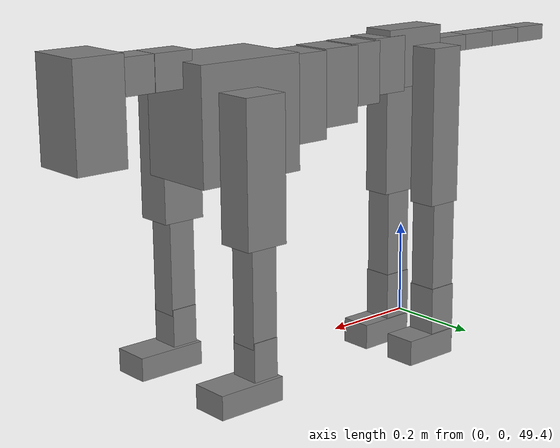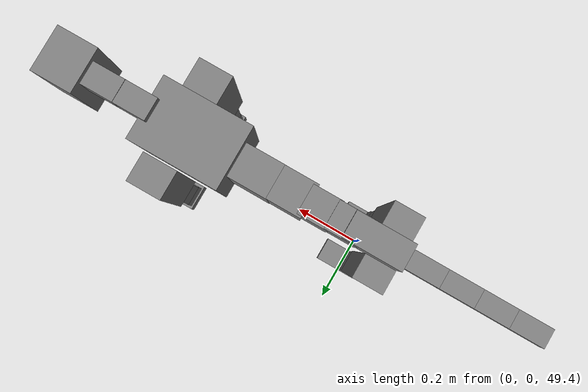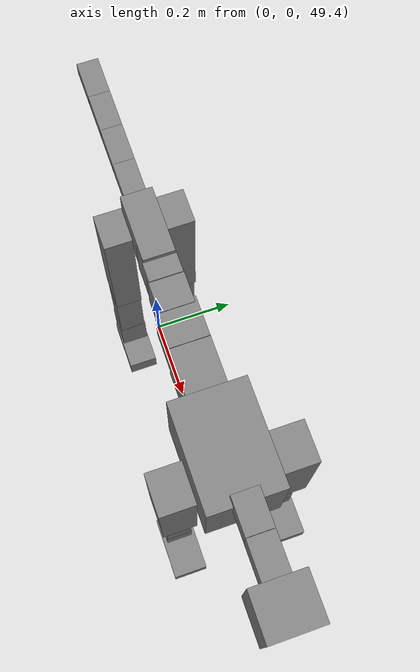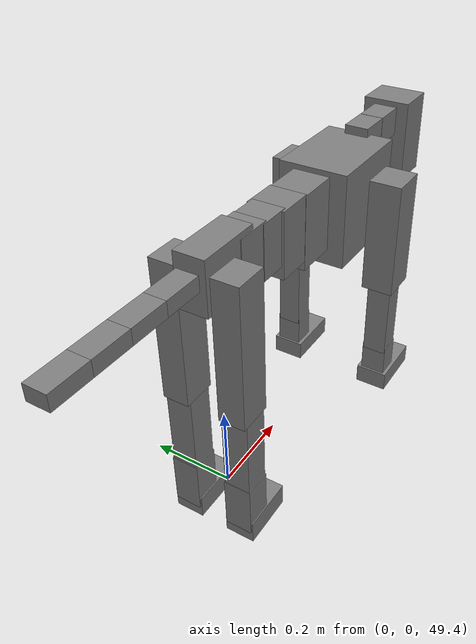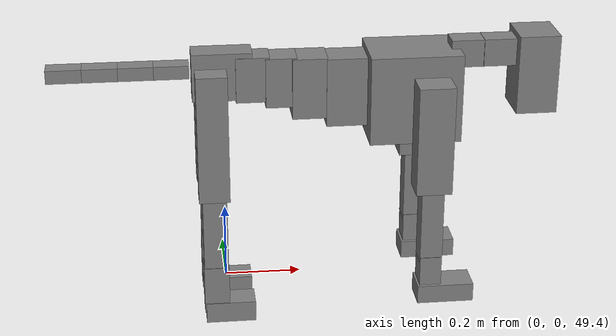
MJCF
<mujoco model="dog">

    <default>
        <joint armature="0.02" stiffness="1" damping="0.2" limited="true"/>
        <geom condim="3" friction="1 0.05 0.05" margin="0.01"/>
        <motor ctrllimited="true" ctrlrange="-1.0 1.0" forcelimited="true" gear="50"/>
    </default>

    <compiler inertiafromgeom="true" angle="radian"/>

    <option timestep="0.016" iterations="50" tolerance="1e-10" solver="Newton" jacobian="dense" cone="pyramidal"/>

    <size nconmax="20000" njmax="60000" nstack="5000000"/>
    <visual>
        <map force="0.1" zfar="30"/>
        <rgba haze="0.15 0.25 0.35 1"/>
        <quality shadowsize="2048"/>
        <global offwidth="800" offheight="800"/>
    </visual>

    <asset>
        <texture type="skybox" builtin="gradient" rgb1="0.3 0.5 0.7" rgb2="0 0 0" width="512" height="512"/>
        <texture name="texplane" type="2d" builtin="checker" rgb1=".2 .3 .4" rgb2=".1 0.15 0.2" width="512" height="512"
                 mark="cross" markrgb=".8 .8 .8"/>
        <texture name="texgeom" type="cube" builtin="flat" mark="cross" width="127" height="1278" rgb1="0.8 0.6 0.4"
                 rgb2="0.8 0.6 0.4" markrgb="1 1 1" random="0.01"/>

        <material name="matplane" reflectance="0.3" texture="texplane" texrepeat="1 1" texuniform="true"/>
        <material name="matgeom" texture="texgeom" texuniform="true" rgba="0.8 0.6 .4 1"/>
    </asset>

    <worldbody>
        <geom name="floor" pos="0 0 0" size="0 0 .25" type="plane" material="matplane" condim="3"/>

        <light directional="false" diffuse=".2 .2 .2" specular="0 0 0" pos="0 0 5" dir="0 0 -1" castshadow="false"/>
        <light mode="targetbodycom" target="torso" directional="false" diffuse=".8 .8 .8" specular="0.3 0.3 0.3"
               pos="0 0 4.0" dir="0 0 -1"/>

        <body name="root" pos="0 0 50">
            <freejoint name="root_1"/>
            <geom type="box" pos="0 0 -0.02" size="0.0774  0.0358  0.063" density="2030"/>

            <body name="spine1" pos="0.054 0 0">
                <joint name="spine1_y" axis="0 1 0" range="0 0.7" limited="true"/>
                <geom type="box" pos="0.02375 0 -0.03" size="0.04375  0.0375  0.05985" density="2030"/>

                <body name="spine2" pos="0.0612 0 0">
                    <joint name="spine2_y" axis="0 1 0" range="-0.15 0.15" limited="true"/>
                    <geom type="box" pos="0.03555  0  -0.04" size="0.04055  0.039  0.06615" density="2030"/>

                    <body name="spine3" pos="0.0730 0 0">
                        <joint name="spine3_y" axis="0 1 0" range="-0.15 0.15" limited="true"/>
                        <geom type="box" pos="0.03555  0  -0.057" size="0.04555  0.0445  0.081" density="2030"/>

                        <body name="spine4" pos="0.0780 0 0">
                            <joint name="spine4_y" axis="0 1 0" range="-0.15 0.15" limited="true"/>
                            <geom type="box" pos="0.05265  0  -0.07" size="0.05265  0.045  0.09135" density="2030"/>

                            <body name="torso" pos="0.1082 0 0">
                                <joint name="torso_y" axis="0 1 0" range="-0.15 0.15" limited="true"/>
                                <geom type="box" pos="0.11925  0  -0.085" size="0.11925  0.085  0.11745"
                                      density="2030"/>

                                <body name="neck1" pos="0.2160  0   0.0180">
                                    <joint name="neck1_y" axis="0 1 0" range="-1.2  -1" limited="true"/>
                                    <geom type="box" pos="0.0423  0  0" size="0.0423  0.03  0.036" density="2325"/>

                                    <body name="neck2" pos="0.0853  0  0">
                                        <joint name="neck2_y" axis="0 1 0" range="0.1  0" limited="true"/>
                                        <geom type="box" pos="0.0423  0  0" size="0.0423  0.03  0.036" density="2325"/>

                                        <body name="head" pos="0.0853  0  0">
                                            <joint name="head_y" axis="0 1 0" range="-0.3  -0.2" limited="true"/>
                                            <geom type="box" pos="0.0531  0  -0.055" size="0.0531  0.06  0.1044"
                                                  density="4030"/>

                                        </body>
                                    </body>
                                </body>

                                <body name="front_shoulder" pos="0.156  0   -0.0480">
                                    <joint name="front_shoulder_y" axis="0 1 0" range="-1 1.5" limited="true"/>
                                    <geom type="box" pos="0 0.13 -0.1190" size="0.0466  0.0398  0.1456" density="1158"/>
                                    <geom type="box" pos="0 -0.13 -0.1190" size="0.0466  0.0398  0.1456"
                                          density="1158"/>

                                    <body name="front_elbow" pos="0  0  -0.2379">
                                        <joint name="front_elbow_y" axis="0 1 0" range="-2 0" limited="true"/>
                                        <geom type="box" pos="0 0.13 -0.1128" size="0.0291  0.0297  0.1128"
                                              density="1081"/>
                                        <geom type="box" pos="0 -0.13 -0.1128" size="0.0291  0.0297  0.1128"
                                              density="1081"/>

                                        <body name="front_wrist" pos="0  0  -0.2256">
                                            <joint name="front_wrist_y" axis="0 1 0" range="-0.2 0" limited="true"/>
                                            <geom type="box" pos="0 0.13 -0.0408" size="0.0284  0.0315  0.0540"
                                                  density="1664"/>
                                            <geom type="box" pos="0 -0.13 -0.0408" size="0.0284  0.0315  0.0540"
                                                  density="1664"/>

                                            <body name="front_finger_end" pos="0  0  -0.0816">
                                                <joint name="front_finger_y" axis="0 1 0" range="-0.4 1"
                                                       limited="true"/>
                                                <geom type="box" pos="0.0405  0.13  -0.0096"
                                                      size="0.0742  0.0405  0.0246" density="1515"/>
                                                <geom type="box" pos="0.0405  -0.13  -0.0096"
                                                      size="0.0742  0.0405  0.0246" density="1515"/>

                                            </body>

                                        </body>
                                    </body>
                                </body>

                            </body>
                        </body>
                    </body>
                </body>
            </body>

            <body name="back_hip" pos="-0.03 0 -0.018">
                <joint name="back_hip_y" axis="0 1 0" range="-1.5 0.3" limited="true"/>
                <geom type="box" pos="0 0.07 -0.1490" size="0.0402  0.0316  0.1718" density="1154"/>
                <geom type="box" pos="0 -0.07 -0.1490" size="0.0402  0.0316  0.1718" density="1154"/>

                <body name="back_knee" pos="0  0  -0.2981">
                    <joint name="back_knee_y" axis="0 1 0" range="0 2.8" limited="true"/>
                    <geom type="box" pos="0 0.07 -0.1120" size="0.0318  0.0313  0.1276" density="1227"/>
                    <geom type="box" pos="0 -0.07 -0.1120" size="0.0318  0.0313  0.1276" density="1227"/>

                    <body name="back_ankle" pos="0  0  -0.2240">
                        <joint name="back_ankle_y" axis="0 1 0" range="-2.2 0" limited="true"/>
                        <geom type="box" pos="0 0.07 -0.0541" size="0.0331  0.0331  0.0653" density="1284"/>
                        <geom type="box" pos="0 -0.07 -0.0541" size="0.0331  0.0331  0.0653" density="1284"/>

                        <body name="back_toe_end" pos="0  0  -0.1082">
                            <joint name="back_toe_y" axis="0 1 0" range="-0.4 1" limited="true"/>
                            <geom type="box" pos="0.0358  0.07  -0.0131" size="0.0656  0.0358  0.0281" density="1515"/>
                            <geom type="box" pos="0.0358  -0.07  -0.0131" size="0.0656  0.0358  0.0281" density="1515"/>

                        </body>
                    </body>
                </body>
            </body>

            <body name="tail1" pos="-0.074 0 -0.006">
                <joint name="tail1_y" axis="0 1 0" range="-0.2 0.2" limited="true"/>
                <geom type="box" pos="-0.0536  0  0" size="0.045  0.025  0.0175" density="1587"/>

                <body name="tail2" pos="-0.09 0 0">
                    <joint name="tail2_y" axis="0 1 0" range="-0.2 0.2" limited="true"/>
                    <geom type="box" pos="-0.0536  0  0" size="0.045  0.025  0.0175" density="1587"/>

                    <body name="tail3" pos="-0.09 0 0">
                        <joint name="tail3_y" axis="0 1 0" range="-0.2 0.2" limited="true"/>
                        <geom type="box" pos="-0.0536  0  0" size="0.045  0.025  0.0175" density="1587"/>

                        <body name="tail4" pos="-0.09 0 0">
                            <joint name="tail4_y" axis="0 1 0" range="-0.2 0.2" limited="true"/>
                            <geom type="box" pos="-0.0536  0  0" size="0.045  0.025  0.0175" density="1587"/>

                        </body>
                    </body>
                </body>
            </body>
        </body>
    </worldbody>

    <actuator>
        <motor joint="spine1_y" forcerange="-150 150     "/>
        <motor joint="spine2_y" forcerange="-150 150     "/>
        <motor joint="spine3_y" forcerange="-150 150     "/>
        <motor joint="spine4_y" forcerange="-150 150     "/>
        <motor joint="torso_y" forcerange="-150 150     "/>
        <motor joint="neck1_y" forcerange="-100 100       "/>
        <motor joint="neck2_y" forcerange="-100 100       "/>
        <motor joint="head_y" forcerange="-150 150       "/>
        <motor joint="front_shoulder_y" forcerange="-171.87 193.41"/>
        <motor joint="front_elbow_y" forcerange="-144.63 171.72"/>
        <motor joint="front_wrist_y" forcerange="-115.62 136.71"/>
        <motor joint="front_finger_y" forcerange="-84.84 91.15"/>
        <motor joint="back_hip_y" forcerange="-260.66 360.14"/>
        <motor joint="back_knee_y" forcerange="-328.42 327.14"/>
        <motor joint="back_angle_y" forcerange="-229.75 200.16"/>
        <motor joint="back_toe_y" forcerange="-89.54 116.73"/>
        <motor joint="tail1_y" forcerange="-50 50     "/>
        <motor joint="tail2_y" forcerange="-50 50     "/>
        <motor joint="tail3_y" forcerange="-50 50     "/>
        <motor joint="tail4_y" forcerange="-50 50     "/>
    </actuator>
</mujoco>
